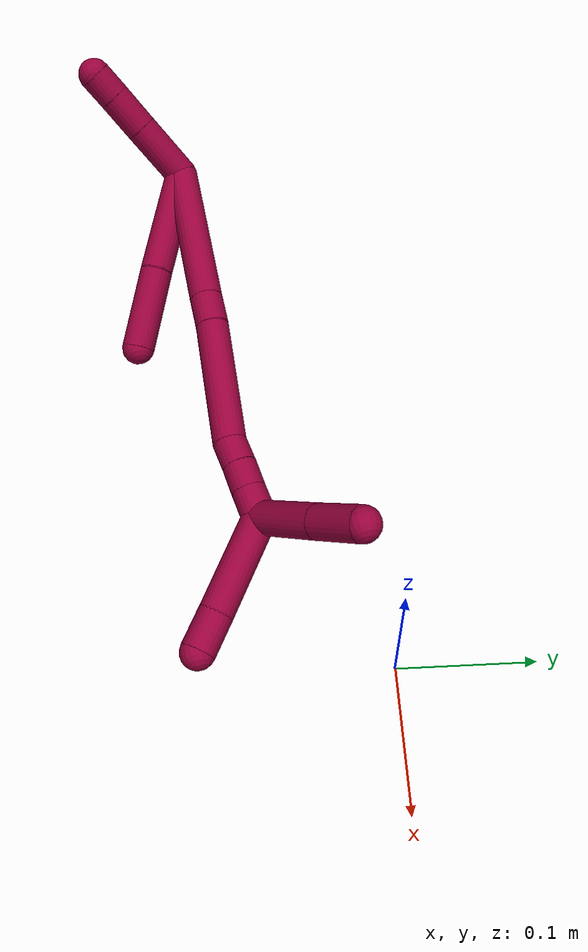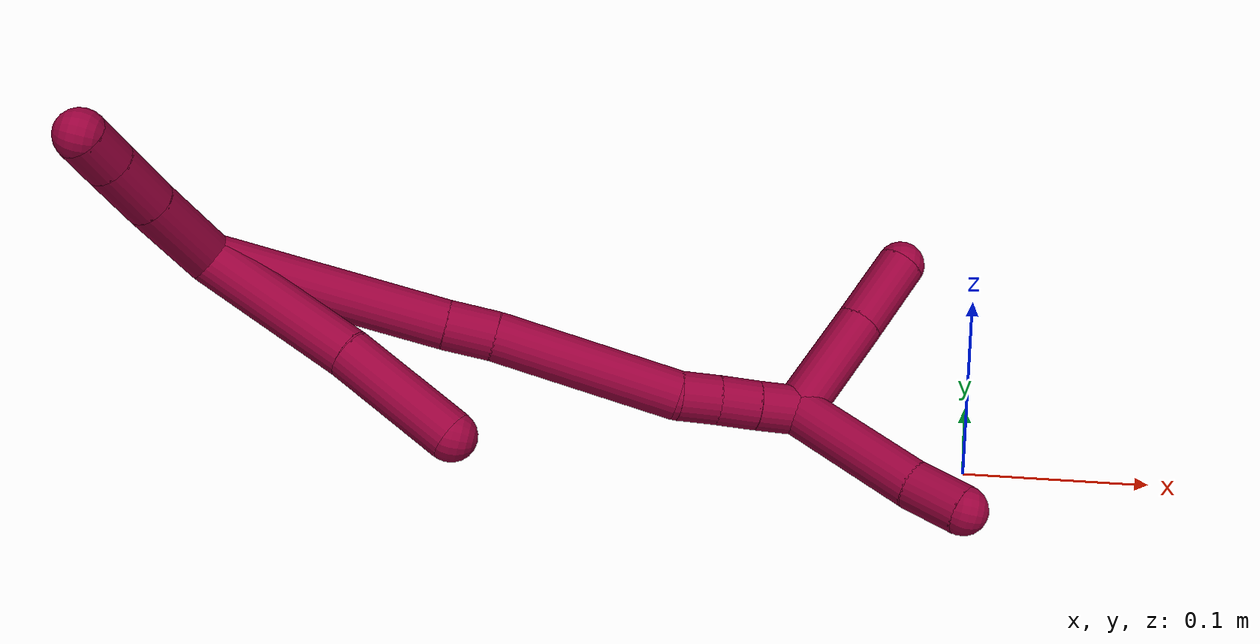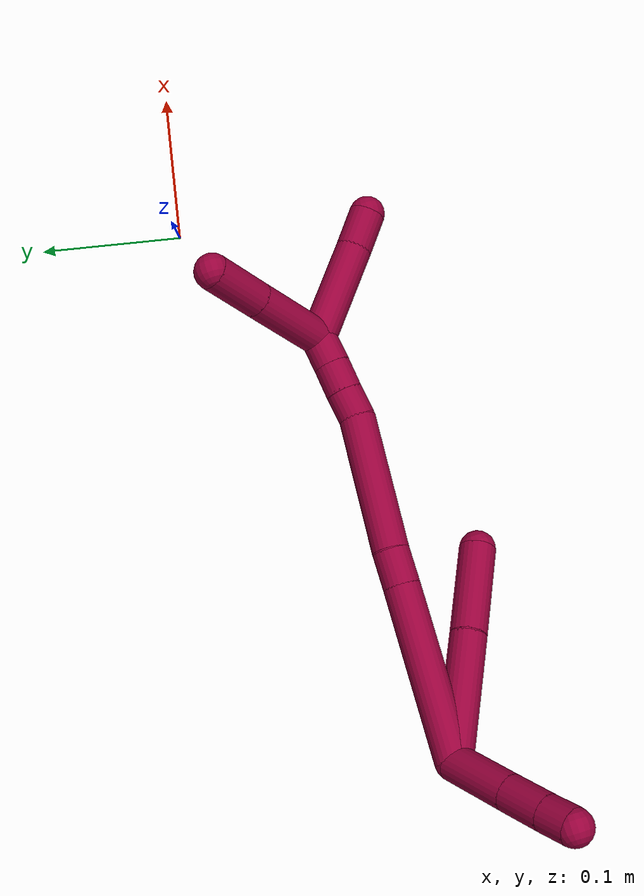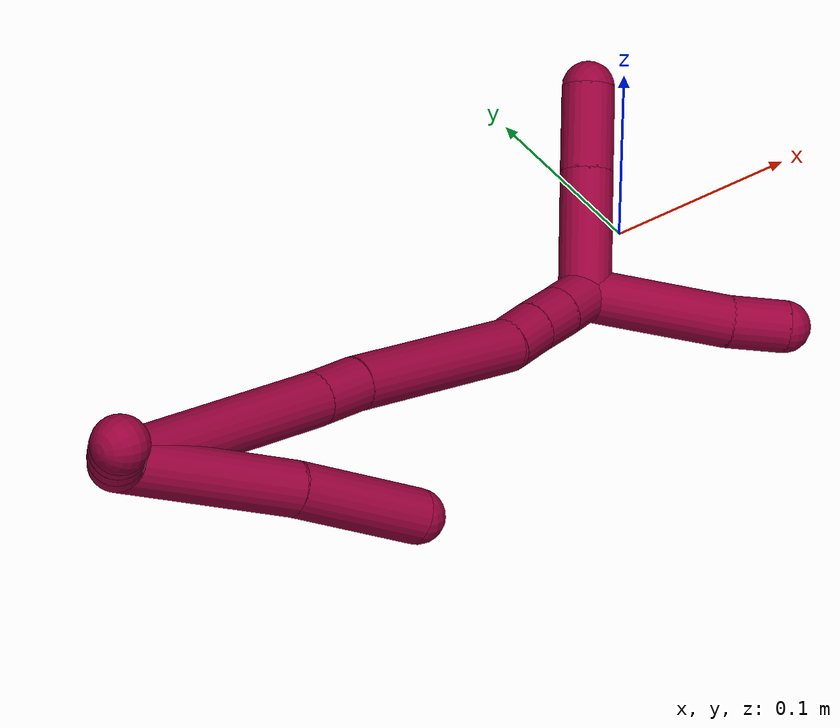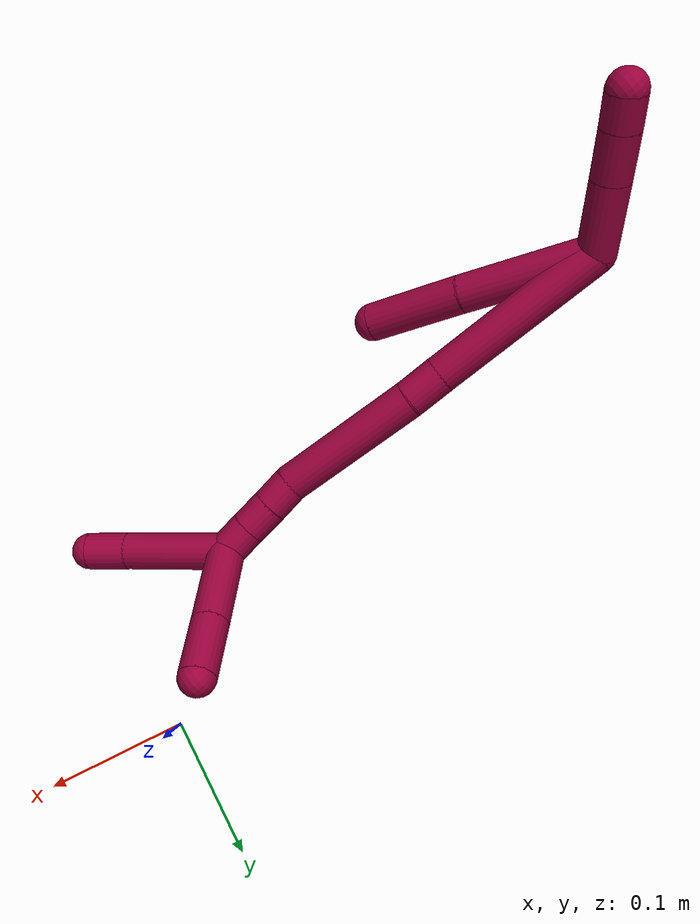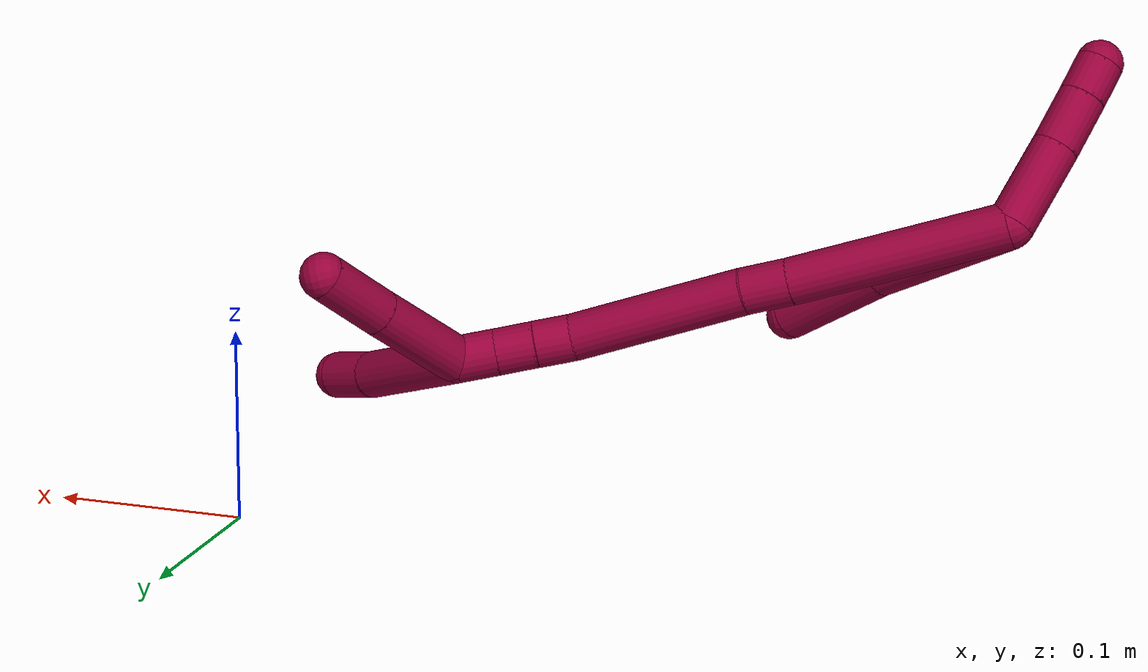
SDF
<sdf version="1.7">
 <world name="default">
  <model name="8">
   <static>0</static>
   <link name="8">
    <collision name="collision-cylinder-e_1_2_8">
     <pose>-0.019803 0.00176 -0.038124 -3.09547 -0.478637 2.9531</pose>
     <geometry><cylinder><radius>0.0125</radius><length>0.085993</length></cylinder></geometry>
     <surface>
      <friction><ode><mu>1.16</mu><mu2>1.16</mu2><slip1>0</slip1><slip2>0</slip2></ode></friction>
      <contact><ode><kp>1e+06</kp><kd>1</kd><max_vel>0</max_vel><min_depth>0.001</min_depth></ode></contact>
     </surface>
    </collision>
    <visual name="visual-cylinder-e_1_2_8">
     <pose>-0.019803 0.00176 -0.038124 -3.09547 -0.478637 2.9531</pose>
     <geometry><cylinder><radius>0.0125</radius><length>0.085993</length></cylinder></geometry>
     <material><ambient>0.584314 0 0.227451 1</ambient></material>
    </visual>
    <collision name="collision-cylinder-e_2_8_6">
     <pose>-0.054853 0.007313 -0.104129 -3.00633 -0.496595 2.61947</pose>
     <geometry><cylinder><radius>0.0125</radius><length>0.064007</length></cylinder></geometry>
     <surface>
      <friction><ode><mu>1.16</mu><mu2>1.16</mu2><slip1>0</slip1><slip2>0</slip2></ode></friction>
      <contact><ode><kp>1e+06</kp><kd>1</kd><max_vel>0</max_vel><min_depth>0.001</min_depth></ode></contact>
     </surface>
    </collision>
    <visual name="visual-cylinder-e_2_8_6">
     <pose>-0.054853 0.007313 -0.104129 -3.00633 -0.496595 2.61947</pose>
     <geometry><cylinder><radius>0.0125</radius><length>0.064007</length></cylinder></geometry>
     <material><ambient>0.584314 0 0.227451 1</ambient></material>
    </visual>
    <collision name="collision-cylinder-e_1_2_9">
     <pose>-0.006802 -0.017794 0.014588 0.884068 -0.287436 -0.136765</pose>
     <geometry><cylinder><radius>0.0125</radius><length>0.047988</length></cylinder></geometry>
     <surface>
      <friction><ode><mu>1.16</mu><mu2>1.16</mu2><slip1>0</slip1><slip2>0</slip2></ode></friction>
      <contact><ode><kp>1e+06</kp><kd>1</kd><max_vel>0</max_vel><min_depth>0.001</min_depth></ode></contact>
     </surface>
    </collision>
    <visual name="visual-cylinder-e_1_2_9">
     <pose>-0.006802 -0.017794 0.014588 0.884068 -0.287436 -0.136765</pose>
     <geometry><cylinder><radius>0.0125</radius><length>0.047988</length></cylinder></geometry>
     <material><ambient>0.584314 0 0.227451 1</ambient></material>
    </visual>
    <collision name="collision-cylinder-e_2_9_10">
     <pose>-0.01775 -0.047287 0.038278 0.909644 -0.272691 -0.133982</pose>
     <geometry><cylinder><radius>0.0125</radius><length>0.030784</length></cylinder></geometry>
     <surface>
      <friction><ode><mu>1.16</mu><mu2>1.16</mu2><slip1>0</slip1><slip2>0</slip2></ode></friction>
      <contact><ode><kp>1e+06</kp><kd>1</kd><max_vel>0</max_vel><min_depth>0.001</min_depth></ode></contact>
     </surface>
    </collision>
    <visual name="visual-cylinder-e_2_9_10">
     <pose>-0.01775 -0.047287 0.038278 0.909644 -0.272691 -0.133982</pose>
     <geometry><cylinder><radius>0.0125</radius><length>0.030784</length></cylinder></geometry>
     <material><ambient>0.584314 0 0.227451 1</ambient></material>
    </visual>
    <collision name="collision-cylinder-e_3_10_5">
     <pose>-0.02485 -0.067149 0.053488 0.928389 -0.282162 -0.14198</pose>
     <geometry><cylinder><radius>0.0125</radius><length>0.021229</length></cylinder></geometry>
     <surface>
      <friction><ode><mu>1.16</mu><mu2>1.16</mu2><slip1>0</slip1><slip2>0</slip2></ode></friction>
      <contact><ode><kp>1e+06</kp><kd>1</kd><max_vel>0</max_vel><min_depth>0.001</min_depth></ode></contact>
     </surface>
    </collision>
    <visual name="visual-cylinder-e_3_10_5">
     <pose>-0.02485 -0.067149 0.053488 0.928389 -0.282162 -0.14198</pose>
     <geometry><cylinder><radius>0.0125</radius><length>0.021229</length></cylinder></geometry>
     <material><ambient>0.584314 0 0.227451 1</ambient></material>
    </visual>
    <collision name="collision-cylinder-e_1_2_11">
     <pose>-0.002013 0.001042 -0.058726 -3.12385 -0.034266 2.18622</pose>
     <geometry><cylinder><radius>0.0125</radius><length>0.117539</length></cylinder></geometry>
     <surface>
      <friction><ode><mu>1.16</mu><mu2>1.16</mu2><slip1>0</slip1><slip2>0</slip2></ode></friction>
      <contact><ode><kp>1e+06</kp><kd>1</kd><max_vel>0</max_vel><min_depth>0.001</min_depth></ode></contact>
     </surface>
    </collision>
    <visual name="visual-cylinder-e_1_2_11">
     <pose>-0.002013 0.001042 -0.058726 -3.12385 -0.034266 2.18622</pose>
     <geometry><cylinder><radius>0.0125</radius><length>0.117539</length></cylinder></geometry>
     <material><ambient>0.584314 0 0.227451 1</ambient></material>
    </visual>
    <collision name="collision-cylinder-e_2_11_12">
     <pose>-0.004085 0.001872 -0.12986 3.12454 -0.004691 -0.536961</pose>
     <geometry><cylinder><radius>0.0125</radius><length>0.024822</length></cylinder></geometry>
     <surface>
      <friction><ode><mu>1.16</mu><mu2>1.16</mu2><slip1>0</slip1><slip2>0</slip2></ode></friction>
      <contact><ode><kp>1e+06</kp><kd>1</kd><max_vel>0</max_vel><min_depth>0.001</min_depth></ode></contact>
     </surface>
    </collision>
    <visual name="visual-cylinder-e_2_11_12">
     <pose>-0.004085 0.001872 -0.12986 3.12454 -0.004691 -0.536961</pose>
     <geometry><cylinder><radius>0.0125</radius><length>0.024822</length></cylinder></geometry>
     <material><ambient>0.584314 0 0.227451 1</ambient></material>
    </visual>
    <collision name="collision-cylinder-e_3_12_13">
     <pose>-0.008064 0.002878 -0.189581 -3.11587 -0.082651 2.53835</pose>
     <geometry><cylinder><radius>0.0125</radius><length>0.094979</length></cylinder></geometry>
     <surface>
      <friction><ode><mu>1.16</mu><mu2>1.16</mu2><slip1>0</slip1><slip2>0</slip2></ode></friction>
      <contact><ode><kp>1e+06</kp><kd>1</kd><max_vel>0</max_vel><min_depth>0.001</min_depth></ode></contact>
     </surface>
    </collision>
    <visual name="visual-cylinder-e_3_12_13">
     <pose>-0.008064 0.002878 -0.189581 -3.11587 -0.082651 2.53835</pose>
     <geometry><cylinder><radius>0.0125</radius><length>0.094979</length></cylinder></geometry>
     <material><ambient>0.584314 0 0.227451 1</ambient></material>
    </visual>
    <collision name="collision-cylinder-e_4_13_14">
     <pose>-0.01028 0.00392 -0.246899 3.12408 0.168709 2.93525</pose>
     <geometry><cylinder><radius>0.0125</radius><length>0.020303</length></cylinder></geometry>
     <surface>
      <friction><ode><mu>1.16</mu><mu2>1.16</mu2><slip1>0</slip1><slip2>0</slip2></ode></friction>
      <contact><ode><kp>1e+06</kp><kd>1</kd><max_vel>0</max_vel><min_depth>0.001</min_depth></ode></contact>
     </surface>
    </collision>
    <visual name="visual-cylinder-e_4_13_14">
     <pose>-0.01028 0.00392 -0.246899 3.12408 0.168709 2.93525</pose>
     <geometry><cylinder><radius>0.0125</radius><length>0.020303</length></cylinder></geometry>
     <material><ambient>0.584314 0 0.227451 1</ambient></material>
    </visual>
    <collision name="collision-cylinder-e_5_14_15">
     <pose>-0.007247 0.003569 -0.267155 3.1244 0.128864 2.87664</pose>
     <geometry><cylinder><radius>0.0125</radius><length>0.020676</length></cylinder></geometry>
     <surface>
      <friction><ode><mu>1.16</mu><mu2>1.16</mu2><slip1>0</slip1><slip2>0</slip2></ode></friction>
      <contact><ode><kp>1e+06</kp><kd>1</kd><max_vel>0</max_vel><min_depth>0.001</min_depth></ode></contact>
     </surface>
    </collision>
    <visual name="visual-cylinder-e_5_14_15">
     <pose>-0.007247 0.003569 -0.267155 3.1244 0.128864 2.87664</pose>
     <geometry><cylinder><radius>0.0125</radius><length>0.020676</length></cylinder></geometry>
     <material><ambient>0.584314 0 0.227451 1</ambient></material>
    </visual>
    <collision name="collision-cylinder-e_6_15_1">
     <pose>-0.004198 0.003192 -0.288107 3.12282 0.159378 2.90759</pose>
     <geometry><cylinder><radius>0.0125</radius><length>0.021681</length></cylinder></geometry>
     <surface>
      <friction><ode><mu>1.16</mu><mu2>1.16</mu2><slip1>0</slip1><slip2>0</slip2></ode></friction>
      <contact><ode><kp>1e+06</kp><kd>1</kd><max_vel>0</max_vel><min_depth>0.001</min_depth></ode></contact>
     </surface>
    </collision>
    <visual name="visual-cylinder-e_6_15_1">
     <pose>-0.004198 0.003192 -0.288107 3.12282 0.159378 2.90759</pose>
     <geometry><cylinder><radius>0.0125</radius><length>0.021681</length></cylinder></geometry>
     <material><ambient>0.584314 0 0.227451 1</ambient></material>
    </visual>
    <collision name="collision-cylinder-e_1_1_16">
     <pose>0.020515 -0.010574 -0.311016 2.30357 0.899921 1.6518</pose>
     <geometry><cylinder><radius>0.0125</radius><length>0.058708</length></cylinder></geometry>
     <surface>
      <friction><ode><mu>1.16</mu><mu2>1.16</mu2><slip1>0</slip1><slip2>0</slip2></ode></friction>
      <contact><ode><kp>1e+06</kp><kd>1</kd><max_vel>0</max_vel><min_depth>0.001</min_depth></ode></contact>
     </surface>
    </collision>
    <visual name="visual-cylinder-e_1_1_16">
     <pose>0.020515 -0.010574 -0.311016 2.30357 0.899921 1.6518</pose>
     <geometry><cylinder><radius>0.0125</radius><length>0.058708</length></cylinder></geometry>
     <material><ambient>0.584314 0 0.227451 1</ambient></material>
    </visual>
    <collision name="collision-cylinder-e_2_16_4">
     <pose>0.059575 -0.034033 -0.331601 2.27342 0.891843 1.6015</pose>
     <geometry><cylinder><radius>0.0125</radius><length>0.041292</length></cylinder></geometry>
     <surface>
      <friction><ode><mu>1.16</mu><mu2>1.16</mu2><slip1>0</slip1><slip2>0</slip2></ode></friction>
      <contact><ode><kp>1e+06</kp><kd>1</kd><max_vel>0</max_vel><min_depth>0.001</min_depth></ode></contact>
     </surface>
    </collision>
    <visual name="visual-cylinder-e_2_16_4">
     <pose>0.059575 -0.034033 -0.331601 2.27342 0.891843 1.6015</pose>
     <geometry><cylinder><radius>0.0125</radius><length>0.041292</length></cylinder></geometry>
     <material><ambient>0.584314 0 0.227451 1</ambient></material>
    </visual>
    <collision name="collision-cylinder-e_1_1_17">
     <pose>-0.023878 -0.000998 -0.327234 3.00217 -0.640659 -2.72672</pose>
     <geometry><cylinder><radius>0.0125</radius><length>0.071608</length></cylinder></geometry>
     <surface>
      <friction><ode><mu>1.16</mu><mu2>1.16</mu2><slip1>0</slip1><slip2>0</slip2></ode></friction>
      <contact><ode><kp>1e+06</kp><kd>1</kd><max_vel>0</max_vel><min_depth>0.001</min_depth></ode></contact>
     </surface>
    </collision>
    <visual name="visual-cylinder-e_1_1_17">
     <pose>-0.023878 -0.000998 -0.327234 3.00217 -0.640659 -2.72672</pose>
     <geometry><cylinder><radius>0.0125</radius><length>0.071608</length></cylinder></geometry>
     <material><ambient>0.584314 0 0.227451 1</ambient></material>
    </visual>
    <collision name="collision-cylinder-e_2_17_3">
     <pose>-0.05326 -0.008002 -0.367007 2.8819 -0.597014 -2.33891</pose>
     <geometry><cylinder><radius>0.0125</radius><length>0.028392</length></cylinder></geometry>
     <surface>
      <friction><ode><mu>1.16</mu><mu2>1.16</mu2><slip1>0</slip1><slip2>0</slip2></ode></friction>
      <contact><ode><kp>1e+06</kp><kd>1</kd><max_vel>0</max_vel><min_depth>0.001</min_depth></ode></contact>
     </surface>
    </collision>
    <visual name="visual-cylinder-e_2_17_3">
     <pose>-0.05326 -0.008002 -0.367007 2.8819 -0.597014 -2.33891</pose>
     <geometry><cylinder><radius>0.0125</radius><length>0.028392</length></cylinder></geometry>
     <material><ambient>0.584314 0 0.227451 1</ambient></material>
    </visual>
    <collision name="collision-sphere-3">
     <pose>-0.06124 -0.011017 -0.378353 0 -0 0</pose>
     <geometry><sphere><radius>0.0125</radius></sphere></geometry>
     <surface>
      <friction><ode><mu>1.16</mu><mu2>1.16</mu2><slip1>0</slip1><slip2>0</slip2></ode></friction>
      <contact><ode><kp>1e+06</kp><kd>1</kd><max_vel>0</max_vel><min_depth>0.001</min_depth></ode></contact>
     </surface>
    </collision>
    <visual name="visual-sphere-3">
     <pose>-0.06124 -0.011017 -0.378353 0 -0 0</pose>
     <geometry><sphere><radius>0.0125</radius></sphere></geometry>
     <material><ambient>0.584314 0 0.227451 1</ambient></material>
    </visual>
    <collision name="collision-sphere-17">
     <pose>-0.045279 -0.004987 -0.35566 0 -0 0</pose>
     <geometry><sphere><radius>0.0125</radius></sphere></geometry>
     <surface>
      <friction><ode><mu>1.16</mu><mu2>1.16</mu2><slip1>0</slip1><slip2>0</slip2></ode></friction>
      <contact><ode><kp>1e+06</kp><kd>1</kd><max_vel>0</max_vel><min_depth>0.001</min_depth></ode></contact>
     </surface>
    </collision>
    <visual name="visual-sphere-17">
     <pose>-0.045279 -0.004987 -0.35566 0 -0 0</pose>
     <geometry><sphere><radius>0.0125</radius></sphere></geometry>
     <material><ambient>0.584314 0 0.227451 1</ambient></material>
    </visual>
    <collision name="collision-sphere-4">
     <pose>0.075642 -0.043927 -0.33998 0 -0 0</pose>
     <geometry><sphere><radius>0.0125</radius></sphere></geometry>
     <surface>
      <friction><ode><mu>1.16</mu><mu2>1.16</mu2><slip1>0</slip1><slip2>0</slip2></ode></friction>
      <contact><ode><kp>1e+06</kp><kd>1</kd><max_vel>0</max_vel><min_depth>0.001</min_depth></ode></contact>
     </surface>
    </collision>
    <visual name="visual-sphere-4">
     <pose>0.075642 -0.043927 -0.33998 0 -0 0</pose>
     <geometry><sphere><radius>0.0125</radius></sphere></geometry>
     <material><ambient>0.584314 0 0.227451 1</ambient></material>
    </visual>
    <collision name="collision-sphere-16">
     <pose>0.043507 -0.024138 -0.323223 0 -0 0</pose>
     <geometry><sphere><radius>0.0125</radius></sphere></geometry>
     <surface>
      <friction><ode><mu>1.16</mu><mu2>1.16</mu2><slip1>0</slip1><slip2>0</slip2></ode></friction>
      <contact><ode><kp>1e+06</kp><kd>1</kd><max_vel>0</max_vel><min_depth>0.001</min_depth></ode></contact>
     </surface>
    </collision>
    <visual name="visual-sphere-16">
     <pose>0.043507 -0.024138 -0.323223 0 -0 0</pose>
     <geometry><sphere><radius>0.0125</radius></sphere></geometry>
     <material><ambient>0.584314 0 0.227451 1</ambient></material>
    </visual>
    <collision name="collision-sphere-1">
     <pose>-0.002477 0.002991 -0.298809 0 -0 0</pose>
     <geometry><sphere><radius>0.0125</radius></sphere></geometry>
     <surface>
      <friction><ode><mu>1.16</mu><mu2>1.16</mu2><slip1>0</slip1><slip2>0</slip2></ode></friction>
      <contact><ode><kp>1e+06</kp><kd>1</kd><max_vel>0</max_vel><min_depth>0.001</min_depth></ode></contact>
     </surface>
    </collision>
    <visual name="visual-sphere-1">
     <pose>-0.002477 0.002991 -0.298809 0 -0 0</pose>
     <geometry><sphere><radius>0.0125</radius></sphere></geometry>
     <material><ambient>0.584314 0 0.227451 1</ambient></material>
    </visual>
    <collision name="collision-sphere-15">
     <pose>-0.005918 0.003393 -0.277406 0 -0 0</pose>
     <geometry><sphere><radius>0.0125</radius></sphere></geometry>
     <surface>
      <friction><ode><mu>1.16</mu><mu2>1.16</mu2><slip1>0</slip1><slip2>0</slip2></ode></friction>
      <contact><ode><kp>1e+06</kp><kd>1</kd><max_vel>0</max_vel><min_depth>0.001</min_depth></ode></contact>
     </surface>
    </collision>
    <visual name="visual-sphere-15">
     <pose>-0.005918 0.003393 -0.277406 0 -0 0</pose>
     <geometry><sphere><radius>0.0125</radius></sphere></geometry>
     <material><ambient>0.584314 0 0.227451 1</ambient></material>
    </visual>
    <collision name="collision-sphere-14">
     <pose>-0.008575 0.003745 -0.256905 0 -0 0</pose>
     <geometry><sphere><radius>0.0125</radius></sphere></geometry>
     <surface>
      <friction><ode><mu>1.16</mu><mu2>1.16</mu2><slip1>0</slip1><slip2>0</slip2></ode></friction>
      <contact><ode><kp>1e+06</kp><kd>1</kd><max_vel>0</max_vel><min_depth>0.001</min_depth></ode></contact>
     </surface>
    </collision>
    <visual name="visual-sphere-14">
     <pose>-0.008575 0.003745 -0.256905 0 -0 0</pose>
     <geometry><sphere><radius>0.0125</radius></sphere></geometry>
     <material><ambient>0.584314 0 0.227451 1</ambient></material>
    </visual>
    <collision name="collision-sphere-13">
     <pose>-0.011984 0.004096 -0.236893 0 -0 0</pose>
     <geometry><sphere><radius>0.0125</radius></sphere></geometry>
     <surface>
      <friction><ode><mu>1.16</mu><mu2>1.16</mu2><slip1>0</slip1><slip2>0</slip2></ode></friction>
      <contact><ode><kp>1e+06</kp><kd>1</kd><max_vel>0</max_vel><min_depth>0.001</min_depth></ode></contact>
     </surface>
    </collision>
    <visual name="visual-sphere-13">
     <pose>-0.011984 0.004096 -0.236893 0 -0 0</pose>
     <geometry><sphere><radius>0.0125</radius></sphere></geometry>
     <material><ambient>0.584314 0 0.227451 1</ambient></material>
    </visual>
    <collision name="collision-sphere-12">
     <pose>-0.004143 0.001661 -0.142269 0 -0 0</pose>
     <geometry><sphere><radius>0.0125</radius></sphere></geometry>
     <surface>
      <friction><ode><mu>1.16</mu><mu2>1.16</mu2><slip1>0</slip1><slip2>0</slip2></ode></friction>
      <contact><ode><kp>1e+06</kp><kd>1</kd><max_vel>0</max_vel><min_depth>0.001</min_depth></ode></contact>
     </surface>
    </collision>
    <visual name="visual-sphere-12">
     <pose>-0.004143 0.001661 -0.142269 0 -0 0</pose>
     <geometry><sphere><radius>0.0125</radius></sphere></geometry>
     <material><ambient>0.584314 0 0.227451 1</ambient></material>
    </visual>
    <collision name="collision-sphere-11">
     <pose>-0.004027 0.002084 -0.117451 0 -0 0</pose>
     <geometry><sphere><radius>0.0125</radius></sphere></geometry>
     <surface>
      <friction><ode><mu>1.16</mu><mu2>1.16</mu2><slip1>0</slip1><slip2>0</slip2></ode></friction>
      <contact><ode><kp>1e+06</kp><kd>1</kd><max_vel>0</max_vel><min_depth>0.001</min_depth></ode></contact>
     </surface>
    </collision>
    <visual name="visual-sphere-11">
     <pose>-0.004027 0.002084 -0.117451 0 -0 0</pose>
     <geometry><sphere><radius>0.0125</radius></sphere></geometry>
     <material><ambient>0.584314 0 0.227451 1</ambient></material>
    </visual>
    <collision name="collision-sphere-8">
     <pose>-0.039606 0.003519 -0.076248 0 -0 0</pose>
     <geometry><sphere><radius>0.0125</radius></sphere></geometry>
     <surface>
      <friction><ode><mu>1.16</mu><mu2>1.16</mu2><slip1>0</slip1><slip2>0</slip2></ode></friction>
      <contact><ode><kp>1e+06</kp><kd>1</kd><max_vel>0</max_vel><min_depth>0.001</min_depth></ode></contact>
     </surface>
    </collision>
    <visual name="visual-sphere-8">
     <pose>-0.039606 0.003519 -0.076248 0 -0 0</pose>
     <geometry><sphere><radius>0.0125</radius></sphere></geometry>
     <material><ambient>0.584314 0 0.227451 1</ambient></material>
    </visual>
    <collision name="collision-sphere-2">
     <geometry><sphere><radius>0.0125</radius></sphere></geometry>
     <surface>
      <friction><ode><mu>1.16</mu><mu2>1.16</mu2><slip1>0</slip1><slip2>0</slip2></ode></friction>
      <contact><ode><kp>1e+06</kp><kd>1</kd><max_vel>0</max_vel><min_depth>0.001</min_depth></ode></contact>
     </surface>
    </collision>
    <visual name="visual-sphere-2">
     <geometry><sphere><radius>0.0125</radius></sphere></geometry>
     <material><ambient>0.584314 0 0.227451 1</ambient></material>
    </visual>
    <collision name="collision-sphere-9">
     <pose>-0.013604 -0.035588 0.029177 0 -0 0</pose>
     <geometry><sphere><radius>0.0125</radius></sphere></geometry>
     <surface>
      <friction><ode><mu>1.16</mu><mu2>1.16</mu2><slip1>0</slip1><slip2>0</slip2></ode></friction>
      <contact><ode><kp>1e+06</kp><kd>1</kd><max_vel>0</max_vel><min_depth>0.001</min_depth></ode></contact>
     </surface>
    </collision>
    <visual name="visual-sphere-9">
     <pose>-0.013604 -0.035588 0.029177 0 -0 0</pose>
     <geometry><sphere><radius>0.0125</radius></sphere></geometry>
     <material><ambient>0.584314 0 0.227451 1</ambient></material>
    </visual>
    <collision name="collision-sphere-6">
     <pose>-0.070101 0.011108 -0.13201 0 -0 0</pose>
     <geometry><sphere><radius>0.0125</radius></sphere></geometry>
     <surface>
      <friction><ode><mu>1.16</mu><mu2>1.16</mu2><slip1>0</slip1><slip2>0</slip2></ode></friction>
      <contact><ode><kp>1e+06</kp><kd>1</kd><max_vel>0</max_vel><min_depth>0.001</min_depth></ode></contact>
     </surface>
    </collision>
    <visual name="visual-sphere-6">
     <pose>-0.070101 0.011108 -0.13201 0 -0 0</pose>
     <geometry><sphere><radius>0.0125</radius></sphere></geometry>
     <material><ambient>0.584314 0 0.227451 1</ambient></material>
    </visual>
    <collision name="collision-sphere-10">
     <pose>-0.021895 -0.058987 0.04738 0 -0 0</pose>
     <geometry><sphere><radius>0.0125</radius></sphere></geometry>
     <surface>
      <friction><ode><mu>1.16</mu><mu2>1.16</mu2><slip1>0</slip1><slip2>0</slip2></ode></friction>
      <contact><ode><kp>1e+06</kp><kd>1</kd><max_vel>0</max_vel><min_depth>0.001</min_depth></ode></contact>
     </surface>
    </collision>
    <visual name="visual-sphere-10">
     <pose>-0.021895 -0.058987 0.04738 0 -0 0</pose>
     <geometry><sphere><radius>0.0125</radius></sphere></geometry>
     <material><ambient>0.584314 0 0.227451 1</ambient></material>
    </visual>
    <collision name="collision-sphere-5">
     <pose>-0.027806 -0.075312 0.059596 0 -0 0</pose>
     <geometry><sphere><radius>0.0125</radius></sphere></geometry>
     <surface>
      <friction><ode><mu>1.16</mu><mu2>1.16</mu2><slip1>0</slip1><slip2>0</slip2></ode></friction>
      <contact><ode><kp>1e+06</kp><kd>1</kd><max_vel>0</max_vel><min_depth>0.001</min_depth></ode></contact>
     </surface>
    </collision>
    <visual name="visual-sphere-5">
     <pose>-0.027806 -0.075312 0.059596 0 -0 0</pose>
     <geometry><sphere><radius>0.0125</radius></sphere></geometry>
     <material><ambient>0.584314 0 0.227451 1</ambient></material>
    </visual>
    <inertial>
     <pose>-0.010301 -0.006367 -0.156865 0 -0 0</pose>
     <mass>0.75</mass>
     <inertia>
      <ixx>-5.2e-05</ixx>
      <ixy>0</ixy>
      <ixz>0</ixz>
      <iyy>0.000453</iyy>
      <iyz>0</iyz>
      <izz>3.4e-05</izz>
     </inertia>
    </inertial>
   </link>
   <pose>-0.367215 -0.145569 0.151664 -1.27986 -0.361853 1.6632</pose>
  </model>
 </world>
</sdf>
